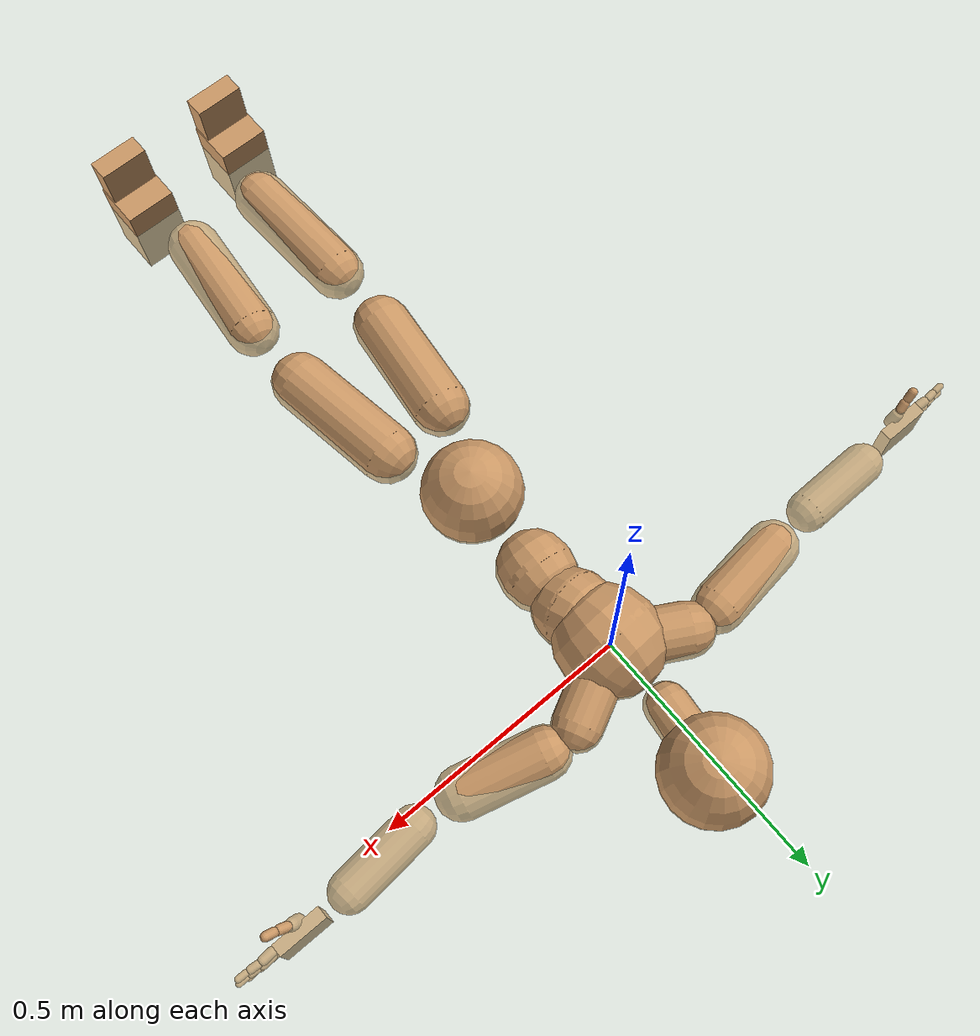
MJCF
<mujoco model="humanoid">
  <compiler coordinate="local"/>
  <default>
    <joint damping="0.0" armature="0.01" stiffness="0.0" limited="true"/>
    <geom conaffinity="1" condim="3" contype="7" margin="0.001" rgba="0.8 0.6 .4 1"/>
  </default>
  <asset>
    <texture type="skybox" builtin="gradient" rgb1=".4 .5 .6" rgb2="0 0 0" width="100" height="100"/>
    <texture builtin="flat" height="1278" mark="cross" markrgb="1 1 1" name="texgeom" random="0.01" rgb1="0.8 0.6 0.4" rgb2="0.8 0.6 0.4" type="cube" width="127"/>
    <texture builtin="checker" height="100" name="texplane" rgb1="0 0 0" rgb2="0.8 0.8 0.8" type="2d" width="100"/>
    <material name="MatPlane" reflectance="0.5" shininess="1" specular="1" texrepeat="60 60" texture="texplane"/>
    <material name="geom" texture="texgeom" texuniform="true"/>
  </asset>
  <worldbody>
    <light cutoff="100" diffuse="1 1 1" dir="-0 0 -1.3" directional="true" exponent="1" pos="0 0 1.3" specular=".1 .1 .1"/>
    <geom conaffinity="1" condim="3" name="floor" pos="0 0 0" rgba="0.8 0.9 0.8 1" size="100 100 .2" type="plane" material="MatPlane"/>
    <body name="Pelvis" pos="0.0028 -0.3793 0.0103">
      <freejoint name="Pelvis"/>
      <geom type="sphere" contype="1" conaffinity="1" density="4629.6296296296305" size="0.0970" pos="0.0000 0.0000 0.0000" name="Pelvis"/>
      <body name="L_Hip" pos="0.0553 -0.0953 -0.0258">
        <joint name="L_Hip_x" type="hinge" pos="0 0 0" axis="1 0 0" user="250 2.5 1 500 10 2" armature="0.01" range="-90.0000 90.0000" damping="0" stiffness="0"/>
        <joint name="L_Hip_y" type="hinge" pos="0 0 0" axis="0 1 0" user="250 2.5 1 500 10 2" armature="0.01" range="-90.0000 90.0000" damping="0" stiffness="0"/>
        <joint name="L_Hip_z" type="hinge" pos="0 0 0" axis="0 0 1" user="250 2.5 1 500 10 2" armature="0.01" range="-90.0000 90.0000" damping="0" stiffness="0"/>
        <geom type="capsule" contype="1" conaffinity="1" density="2040.816327" fromto="0.0111 -0.0754 -0.0016 0.0443 -0.3015 -0.0066" size="0.0576" name="L_Hip"/>
        <body name="L_Knee" pos="0.0554 -0.3768 -0.0082">
          <joint name="L_Knee_x" type="hinge" pos="0 0 0" axis="1 0 0" user="250 2.5 1 500 10 2" armature="0.01" range="-180.0000 180.0000" damping="0" stiffness="0"/>
          <joint name="L_Knee_y" type="hinge" pos="0 0 0" axis="0 1 0" user="250 2.5 1 500 10 2" armature="0.01" range="-5.6250 5.6250" damping="0" stiffness="0"/>
          <joint name="L_Knee_z" type="hinge" pos="0 0 0" axis="0 0 1" user="250 2.5 1 500 10 2" armature="0.01" range="-5.6250 5.6250" damping="0" stiffness="0"/>
          <geom type="capsule" contype="1" conaffinity="1" density="1234.567901" fromto="-0.0085 -0.0798 -0.0061 -0.0341 -0.3191 -0.0246" size="0.0522" name="L_Knee"/>
          <body name="L_Ankle" pos="-0.0426 -0.3989 -0.0307">
            <joint name="L_Ankle_x" type="hinge" pos="0 0 0" axis="1 0 0" user="150 2.5 1 500 10 2" armature="0.01" range="-90.0000 90.0000" damping="0" stiffness="0"/>
            <joint name="L_Ankle_y" type="hinge" pos="0 0 0" axis="0 1 0" user="150 2.5 1 500 10 2" armature="0.01" range="-90.0000 90.0000" damping="0" stiffness="0"/>
            <joint name="L_Ankle_z" type="hinge" pos="0 0 0" axis="0 0 1" user="150 2.5 1 500 10 2" armature="0.01" range="-90.0000 90.0000" damping="0" stiffness="0"/>
            <geom type="box" density="447.069011" pos="0.0410 -0.0287 0.0243" size="0.0501 0.0468 0.0857" quat="1.0000 0.0000 0.0000 0.0000" name="L_Ankle"/>
            <body name="L_Toe" pos="0.0476 -0.0584 0.1195">
              <joint name="L_Toe_x" type="hinge" pos="0 0 0" axis="1 0 0" user="150 1 1 500 1 1" armature="0.01" range="-90.0000 90.0000" damping="0" stiffness="0"/>
              <joint name="L_Toe_y" type="hinge" pos="0 0 0" axis="0 1 0" user="150 1 1 500 1 1" armature="0.01" range="-45.0000 45.0000" damping="0" stiffness="0"/>
              <joint name="L_Toe_z" type="hinge" pos="0 0 0" axis="0 0 1" user="150 1 1 500 1 1" armature="0.01" range="-45.0000 45.0000" damping="0" stiffness="0"/>
              <geom type="box" density="422.640499" pos="-0.0065 0.0036 0.0261" size="0.0481 0.0206 0.05" quat="1.0000 0.0000 0.0000 0.0000" name="L_Toe"/>
            </body>
          </body>
        </body>
      </body>
      <body name="R_Hip" pos="-0.0601 -0.1073 -0.021">
        <joint name="R_Hip_x" type="hinge" pos="0 0 0" axis="1 0 0" user="250 2.5 1 500 10 2" armature="0.01" range="-90.0000 90.0000" damping="0" stiffness="0"/>
        <joint name="R_Hip_y" type="hinge" pos="0 0 0" axis="0 1 0" user="250 2.5 1 500 10 2" armature="0.01" range="-90.0000 90.0000" damping="0" stiffness="0"/>
        <joint name="R_Hip_z" type="hinge" pos="0 0 0" axis="0 0 1" user="250 2.5 1 500 10 2" armature="0.01" range="-90.0000 90.0000" damping="0" stiffness="0"/>
        <geom type="capsule" contype="1" conaffinity="1" density="2040.816327" fromto="-0.0090 -0.0719 -0.0031 -0.0360 -0.2875 -0.0124" size="0.0569" name="R_Hip"/>
        <body name="R_Knee" pos="-0.045 -0.3594 -0.0155">
          <joint name="R_Knee_x" type="hinge" pos="0 0 0" axis="1 0 0" user="250 2.5 1 500 10 2" armature="0.01" range="-180.0000 180.0000" damping="0" stiffness="0"/>
          <joint name="R_Knee_y" type="hinge" pos="0 0 0" axis="0 1 0" user="250 2.5 1 500 10 2" armature="0.01" range="-5.6250 5.6250" damping="0" stiffness="0"/>
          <joint name="R_Knee_z" type="hinge" pos="0 0 0" axis="0 0 1" user="250 2.5 1 500 10 2" armature="0.01" range="-5.6250 5.6250" damping="0" stiffness="0"/>
          <geom type="capsule" contype="1" conaffinity="1" density="1234.567901" fromto="0.0030 -0.0814 -0.0038 0.0119 -0.3254 -0.0154" size="0.0538" name="R_Knee"/>
          <body name="R_Ankle" pos="0.0149 -0.4068 -0.0192">
            <joint name="R_Ankle_x" type="hinge" pos="0 0 0" axis="1 0 0" user="150 1 1 500 10 2" armature="0.01" range="-90.0000 90.0000" damping="0" stiffness="0"/>
            <joint name="R_Ankle_y" type="hinge" pos="0 0 0" axis="0 1 0" user="150 1 1 500 10 2" armature="0.01" range="-90.0000 90.0000" damping="0" stiffness="0"/>
            <joint name="R_Ankle_z" type="hinge" pos="0 0 0" axis="0 0 1" user="150 1 1 500 10 2" armature="0.01" range="-90.0000 90.0000" damping="0" stiffness="0"/>
            <geom type="box" density="447.059452" pos="-0.0245 -0.0262 0.0153" size="0.0501 0.0468 0.0857" quat="1.0000 0.0000 0.0000 0.0000" name="R_Ankle"/>
            <body name="R_Toe" pos="-0.039 -0.0588 0.1203">
              <joint name="R_Toe_x" type="hinge" pos="0 0 0" axis="1 0 0" user="150 1 1 500 1 1" armature="0.01" range="-90.0000 90.0000" damping="0" stiffness="0"/>
              <joint name="R_Toe_y" type="hinge" pos="0 0 0" axis="0 1 0" user="150 1 1 500 1 1" armature="0.01" range="-45.0000 45.0000" damping="0" stiffness="0"/>
              <joint name="R_Toe_z" type="hinge" pos="0 0 0" axis="0 0 1" user="150 1 1 500 1 1" armature="0.01" range="-45.0000 45.0000" damping="0" stiffness="0"/>
              <geom type="box" density="422.641569" pos="0.0145 0.0065 0.0162" size="0.0481 0.0206 0.05" quat="1.0000 0.0000 0.0000 0.0000" name="R_Toe"/>
            </body>
          </body>
        </body>
      </body>
      <body name="Torso" pos="-0.0023 0.1133 -0.0273">
        <joint name="Torso_x" type="hinge" pos="0 0 0" axis="1 0 0" user="500 5 1 500 10 2" armature="0.01" range="-60.0000 60.0000" damping="0" stiffness="0"/>
        <joint name="Torso_y" type="hinge" pos="0 0 0" axis="0 1 0" user="500 5 1 500 10 2" armature="0.01" range="-60.0000 60.0000" damping="0" stiffness="0"/>
        <joint name="Torso_z" type="hinge" pos="0 0 0" axis="0 0 1" user="500 5 1 500 10 2" armature="0.01" range="-60.0000 60.0000" damping="0" stiffness="0"/>
        <geom type="capsule" contype="1" conaffinity="1" density="2040.816327" fromto="0.0041 0.0654 -0.0024 0.0050 0.0799 -0.0029" size="0.0723" name="Torso"/>
        <body name="Spine" pos="0.0091 0.1453 -0.0053">
          <joint name="Spine_x" type="hinge" pos="0 0 0" axis="1 0 0" user="500 5 1 500 10 2" armature="0.01" range="-60.0000 60.0000" damping="0" stiffness="0"/>
          <joint name="Spine_y" type="hinge" pos="0 0 0" axis="0 1 0" user="500 5 1 500 10 2" armature="0.01" range="-60.0000 60.0000" damping="0" stiffness="0"/>
          <joint name="Spine_z" type="hinge" pos="0 0 0" axis="0 0 1" user="500 5 1 500 10 2" armature="0.01" range="-60.0000 60.0000" damping="0" stiffness="0"/>
          <geom type="capsule" contype="1" conaffinity="1" density="2040.816327" fromto="-0.0050 0.0251 0.0113 -0.0061 0.0307 0.0138" size="0.0764" name="Spine"/>
          <body name="Chest" pos="-0.0111 0.0559 0.0251">
            <joint name="Chest_x" type="hinge" pos="0 0 0" axis="1 0 0" user="500 5 1 500 10 2" armature="0.01" range="-60.0000 60.0000" damping="0" stiffness="0"/>
            <joint name="Chest_y" type="hinge" pos="0 0 0" axis="0 1 0" user="500 5 1 500 10 2" armature="0.01" range="-60.0000 60.0000" damping="0" stiffness="0"/>
            <joint name="Chest_z" type="hinge" pos="0 0 0" axis="0 0 1" user="500 5 1 500 10 2" armature="0.01" range="-60.0000 60.0000" damping="0" stiffness="0"/>
            <geom type="capsule" contype="1" conaffinity="1" density="2040.816327" fromto="-0.0019 0.0520 -0.0071 -0.0024 0.0636 -0.0087" size="0.1015" name="Chest"/>
            <body name="Neck" pos="-0.0118 0.1718 -0.0288">
              <joint name="Neck_x" type="hinge" pos="0 0 0" axis="1 0 0" user="150 1 1 250 50 4" armature="0.01" range="-180.0000 180.0000" damping="0" stiffness="0"/>
              <joint name="Neck_y" type="hinge" pos="0 0 0" axis="0 1 0" user="150 1 1 250 50 4" armature="0.01" range="-180.0000 180.0000" damping="0" stiffness="0"/>
              <joint name="Neck_z" type="hinge" pos="0 0 0" axis="0 0 1" user="150 1 1 250 50 4" armature="0.01" range="-180.0000 180.0000" damping="0" stiffness="0"/>
              <geom type="capsule" contype="1" conaffinity="1" density="1000" fromto="0.0049 0.0349 0.0045 0.0197 0.1394 0.0180" size="0.0427" name="Neck"/>
              <body name="Head" pos="0.0246 0.1743 0.0225">
                <joint name="Head_x" type="hinge" pos="0 0 0" axis="1 0 0" user="150 1 1 250 50 4" armature="0.01" range="-90.0000 90.0000" damping="0" stiffness="0"/>
                <joint name="Head_y" type="hinge" pos="0 0 0" axis="0 1 0" user="150 1 1 250 50 4" armature="0.01" range="-90.0000 90.0000" damping="0" stiffness="0"/>
                <joint name="Head_z" type="hinge" pos="0 0 0" axis="0 0 1" user="150 1 1 250 50 4" armature="0.01" range="-90.0000 90.0000" damping="0" stiffness="0"/>
                <geom type="sphere" contype="1" conaffinity="1" density="1000" size="0.1020" pos="0.0000 0.0000 0.0000" name="Head"/>
              </body>
            </body>
            <body name="L_Thorax" pos="0.0455 0.0879 -0.0064">
              <joint name="L_Thorax_x" type="hinge" pos="0 0 0" axis="1 0 0" user="200 2 1 500 50 4" armature="0.01" range="-180.0000 180.0000" damping="0" stiffness="0"/>
              <joint name="L_Thorax_y" type="hinge" pos="0 0 0" axis="0 1 0" user="200 2 1 500 50 4" armature="0.01" range="-180.0000 180.0000" damping="0" stiffness="0"/>
              <joint name="L_Thorax_z" type="hinge" pos="0 0 0" axis="0 0 1" user="200 2 1 500 50 4" armature="0.01" range="-180.0000 180.0000" damping="0" stiffness="0"/>
              <geom type="capsule" contype="1" conaffinity="1" density="1000" fromto="0.0233 0.0115 -0.0030 0.0931 0.0461 -0.0121" size="0.0479" name="L_Thorax"/>
              <body name="L_Shoulder" pos="0.1164 0.0576 -0.0152">
                <joint name="L_Shoulder_x" type="hinge" pos="0 0 0" axis="1 0 0" user="200 2 1 500 50 4" armature="0.01" range="-180.0000 180.0000" damping="0" stiffness="0"/>
                <joint name="L_Shoulder_y" type="hinge" pos="0 0 0" axis="0 1 0" user="200 2 1 500 50 4" armature="0.01" range="-180.0000 180.0000" damping="0" stiffness="0"/>
                <joint name="L_Shoulder_z" type="hinge" pos="0 0 0" axis="0 0 1" user="200 2 1 500 50 4" armature="0.01" range="-180.0000 180.0000" damping="0" stiffness="0"/>
                <geom type="capsule" contype="1" conaffinity="1" density="1000" fromto="0.0500 -0.0143 -0.0080 0.2002 -0.0573 -0.0322" size="0.0504" name="L_Shoulder"/>
                <body name="L_Elbow" pos="0.2502 -0.0716 -0.0402">
                  <joint name="L_Elbow_x" type="hinge" pos="0 0 0" axis="1 0 0" user="150 1 1 150 10 2" armature="0.01" range="-720.0000 720.0000" damping="0" stiffness="0"/>
                  <joint name="L_Elbow_y" type="hinge" pos="0 0 0" axis="0 1 0" user="150 1 1 150 10 2" armature="0.01" range="-720.0000 720.0000" damping="0" stiffness="0"/>
                  <joint name="L_Elbow_z" type="hinge" pos="0 0 0" axis="0 0 1" user="150 1 1 150 10 2" armature="0.01" range="-720.0000 720.0000" damping="0" stiffness="0"/>
                  <geom type="capsule" contype="1" conaffinity="1" density="1000" fromto="0.0503 0.0043 -0.0004 0.2010 0.0172 -0.0015" size="0.0398" name="L_Elbow"/>
                  <body name="L_Wrist" pos="0.2513 0.0215 -0.0019">
                    <joint name="L_Wrist_x" type="hinge" pos="0 0 0" axis="1 0 0" user="100 1 1 150 1 1" armature="0.01" range="-180.0000 180.0000" damping="0" stiffness="0"/>
                    <joint name="L_Wrist_y" type="hinge" pos="0 0 0" axis="0 1 0" user="100 1 1 150 1 1" armature="0.01" range="-180.0000 180.0000" damping="0" stiffness="0"/>
                    <joint name="L_Wrist_z" type="hinge" pos="0 0 0" axis="0 0 1" user="100 1 1 150 1 1" armature="0.01" range="-180.0000 180.0000" damping="0" stiffness="0"/>
                    <geom type="box" density="1208.770029" pos="0.0523 -0.0014 -0.0030" size="0.0483 0.0123 0.0464" quat="1.0000 0.0000 0.0000 0.0000" name="L_Wrist"/>
                    <body name="L_Index1" pos="0.1017 -0.0085 0.0196">
                      <joint name="L_Index1_x" type="hinge" pos="0 0 0" axis="1 0 0" user="100 10 1 150" armature="0.01" range="-180.0000 180.0000" damping="0" stiffness="0"/>
                      <joint name="L_Index1_y" type="hinge" pos="0 0 0" axis="0 1 0" user="100 10 1 150" armature="0.01" range="-180.0000 180.0000" damping="0" stiffness="0"/>
                      <joint name="L_Index1_z" type="hinge" pos="0 0 0" axis="0 0 1" user="100 10 1 150" armature="0.01" range="-180.0000 180.0000" damping="0" stiffness="0"/>
                      <geom type="capsule" contype="1" conaffinity="1" density="1000" fromto="0.0064 0.0005 0.0006 0.0256 0.0018 0.0023" size="0.0093" name="L_Index1"/>
                      <body name="L_Index2" pos="0.0321 0.0023 0.0029">
                        <joint name="L_Index2_x" type="hinge" pos="0 0 0" axis="1 0 0" user="100 10 1 150" armature="0.01" range="-180.0000 180.0000" damping="0" stiffness="0"/>
                        <joint name="L_Index2_y" type="hinge" pos="0 0 0" axis="0 1 0" user="100 10 1 150" armature="0.01" range="-180.0000 180.0000" damping="0" stiffness="0"/>
                        <joint name="L_Index2_z" type="hinge" pos="0 0 0" axis="0 0 1" user="100 10 1 150" armature="0.01" range="-180.0000 180.0000" damping="0" stiffness="0"/>
                        <geom type="capsule" contype="1" conaffinity="1" density="1000" fromto="0.0045 -0.0005 -0.0000 0.0181 -0.0019 -0.0001" size="0.0077" name="L_Index2"/>
                        <body name="L_Index3" pos="0.0226 -0.0024 -0.0001">
                          <joint name="L_Index3_x" type="hinge" pos="0 0 0" axis="1 0 0" user="100 10 1 150" armature="0.01" range="-180.0000 180.0000" damping="0" stiffness="0"/>
                          <joint name="L_Index3_y" type="hinge" pos="0 0 0" axis="0 1 0" user="100 10 1 150" armature="0.01" range="-180.0000 180.0000" damping="0" stiffness="0"/>
                          <joint name="L_Index3_z" type="hinge" pos="0 0 0" axis="0 0 1" user="100 10 1 150" armature="0.01" range="-180.0000 180.0000" damping="0" stiffness="0"/>
                          <geom type="capsule" contype="1" conaffinity="1" density="1000" fromto="0.0049 -0.0001 0.0004 0.0197 -0.0003 0.0015" size="0.0065" name="L_Index3"/>
                        </body>
                      </body>
                    </body>
                    <body name="L_Middle1" pos="0.1092 -0.0062 -0.004">
                      <joint name="L_Middle1_x" type="hinge" pos="0 0 0" axis="1 0 0" user="100 10 1 150" armature="0.01" range="-180.0000 180.0000" damping="0" stiffness="0"/>
                      <joint name="L_Middle1_y" type="hinge" pos="0 0 0" axis="0 1 0" user="100 10 1 150" armature="0.01" range="-180.0000 180.0000" damping="0" stiffness="0"/>
                      <joint name="L_Middle1_z" type="hinge" pos="0 0 0" axis="0 0 1" user="100 10 1 150" armature="0.01" range="-180.0000 180.0000" damping="0" stiffness="0"/>
                      <geom type="capsule" contype="1" conaffinity="1" density="1000" fromto="0.0061 0.0001 -0.0008 0.0245 0.0006 -0.0033" size="0.0095" name="L_Middle1"/>
                      <body name="L_Middle2" pos="0.0306 0.0007 -0.0041">
                        <joint name="L_Middle2_x" type="hinge" pos="0 0 0" axis="1 0 0" user="100 10 1 150" armature="0.01" range="-180.0000 180.0000" damping="0" stiffness="0"/>
                        <joint name="L_Middle2_y" type="hinge" pos="0 0 0" axis="0 1 0" user="100 10 1 150" armature="0.01" range="-180.0000 180.0000" damping="0" stiffness="0"/>
                        <joint name="L_Middle2_z" type="hinge" pos="0 0 0" axis="0 0 1" user="100 10 1 150" armature="0.01" range="-180.0000 180.0000" damping="0" stiffness="0"/>
                        <geom type="capsule" contype="1" conaffinity="1" density="1000" fromto="0.0047 -0.0004 -0.0008 0.0188 -0.0016 -0.0033" size="0.0071" name="L_Middle2"/>
                        <body name="L_Middle3" pos="0.0235 -0.002 -0.0042">
                          <joint name="L_Middle3_x" type="hinge" pos="0 0 0" axis="1 0 0" user="100 10 1 150" armature="0.01" range="-180.0000 180.0000" damping="0" stiffness="0"/>
                          <joint name="L_Middle3_y" type="hinge" pos="0 0 0" axis="0 1 0" user="100 10 1 150" armature="0.01" range="-180.0000 180.0000" damping="0" stiffness="0"/>
                          <joint name="L_Middle3_z" type="hinge" pos="0 0 0" axis="0 0 1" user="100 10 1 150" armature="0.01" range="-180.0000 180.0000" damping="0" stiffness="0"/>
                          <geom type="capsule" contype="1" conaffinity="1" density="1000" fromto="0.0051 -0.0000 -0.0004 0.0204 -0.0000 -0.0017" size="0.0062" name="L_Middle3"/>
                        </body>
                      </body>
                    </body>
                    <body name="L_Pinky1" pos="0.084 -0.0145 -0.0442">
                      <joint name="L_Pinky1_x" type="hinge" pos="0 0 0" axis="1 0 0" user="100 10 1 150" armature="0.01" range="-180.0000 180.0000" damping="0" stiffness="0"/>
                      <joint name="L_Pinky1_y" type="hinge" pos="0 0 0" axis="0 1 0" user="100 10 1 150" armature="0.01" range="-180.0000 180.0000" damping="0" stiffness="0"/>
                      <joint name="L_Pinky1_z" type="hinge" pos="0 0 0" axis="0 0 1" user="100 10 1 150" armature="0.01" range="-180.0000 180.0000" damping="0" stiffness="0"/>
                      <geom type="capsule" contype="1" conaffinity="1" density="1000" fromto="0.0031 -0.0002 -0.0024 0.0126 -0.0009 -0.0096" size="0.0067" name="L_Pinky1"/>
                      <body name="L_Pinky2" pos="0.0157 -0.0012 -0.012">
                        <joint name="L_Pinky2_x" type="hinge" pos="0 0 0" axis="1 0 0" user="100 10 1 150" armature="0.01" range="-180.0000 180.0000" damping="0" stiffness="0"/>
                        <joint name="L_Pinky2_y" type="hinge" pos="0 0 0" axis="0 1 0" user="100 10 1 150" armature="0.01" range="-180.0000 180.0000" damping="0" stiffness="0"/>
                        <joint name="L_Pinky2_z" type="hinge" pos="0 0 0" axis="0 0 1" user="100 10 1 150" armature="0.01" range="-180.0000 180.0000" damping="0" stiffness="0"/>
                        <geom type="capsule" contype="1" conaffinity="1" density="1000" fromto="0.0031 -0.0003 -0.0022 0.0125 -0.0014 -0.0089" size="0.0065" name="L_Pinky2"/>
                        <body name="L_Pinky3" pos="0.0157 -0.0017 -0.0112">
                          <joint name="L_Pinky3_x" type="hinge" pos="0 0 0" axis="1 0 0" user="100 10 1 150" armature="0.01" range="-180.0000 180.0000" damping="0" stiffness="0"/>
                          <joint name="L_Pinky3_y" type="hinge" pos="0 0 0" axis="0 1 0" user="100 10 1 150" armature="0.01" range="-180.0000 180.0000" damping="0" stiffness="0"/>
                          <joint name="L_Pinky3_z" type="hinge" pos="0 0 0" axis="0 0 1" user="100 10 1 150" armature="0.01" range="-180.0000 180.0000" damping="0" stiffness="0"/>
                          <geom type="capsule" contype="1" conaffinity="1" density="1000" fromto="0.0035 0.0001 -0.0018 0.0141 0.0002 -0.0073" size="0.005" name="L_Pinky3"/>
                        </body>
                      </body>
                    </body>
                    <body name="L_Ring1" pos="0.0973 -0.0091 -0.0276">
                      <joint name="L_Ring1_x" type="hinge" pos="0 0 0" axis="1 0 0" user="100 10 1 150" armature="0.01" range="-180.0000 180.0000" damping="0" stiffness="0"/>
                      <joint name="L_Ring1_y" type="hinge" pos="0 0 0" axis="0 1 0" user="100 10 1 150" armature="0.01" range="-180.0000 180.0000" damping="0" stiffness="0"/>
                      <joint name="L_Ring1_z" type="hinge" pos="0 0 0" axis="0 0 1" user="100 10 1 150" armature="0.01" range="-180.0000 180.0000" damping="0" stiffness="0"/>
                      <geom type="capsule" contype="1" conaffinity="1" density="1000" fromto="0.0056 0.0003 -0.0011 0.0226 0.0012 -0.0042" size="0.008" name="L_Ring1"/>
                      <body name="L_Ring2" pos="0.0282 0.0015 -0.0053">
                        <joint name="L_Ring2_x" type="hinge" pos="0 0 0" axis="1 0 0" user="100 10 1 150" armature="0.01" range="-180.0000 180.0000" damping="0" stiffness="0"/>
                        <joint name="L_Ring2_y" type="hinge" pos="0 0 0" axis="0 1 0" user="100 10 1 150" armature="0.01" range="-180.0000 180.0000" damping="0" stiffness="0"/>
                        <joint name="L_Ring2_z" type="hinge" pos="0 0 0" axis="0 0 1" user="100 10 1 150" armature="0.01" range="-180.0000 180.0000" damping="0" stiffness="0"/>
                        <geom type="capsule" contype="1" conaffinity="1" density="1000" fromto="0.0046 -0.0003 -0.0014 0.0183 -0.0012 -0.0057" size="0.0075" name="L_Ring2"/>
                        <body name="L_Ring3" pos="0.0229 -0.0015 -0.0071">
                          <joint name="L_Ring3_x" type="hinge" pos="0 0 0" axis="1 0 0" user="100 10 1 150" armature="0.01" range="-180.0000 180.0000" damping="0" stiffness="0"/>
                          <joint name="L_Ring3_y" type="hinge" pos="0 0 0" axis="0 1 0" user="100 10 1 150" armature="0.01" range="-180.0000 180.0000" damping="0" stiffness="0"/>
                          <joint name="L_Ring3_z" type="hinge" pos="0 0 0" axis="0 0 1" user="100 10 1 150" armature="0.01" range="-180.0000 180.0000" damping="0" stiffness="0"/>
                          <geom type="capsule" contype="1" conaffinity="1" density="1000" fromto="0.0050 0.0001 -0.0010 0.0199 0.0004 -0.0041" size="0.0058" name="L_Ring3"/>
                        </body>
                      </body>
                    </body>
                    <body name="L_Thumb1" pos="0.0404 -0.0182 0.026">
                      <joint name="L_Thumb1_x" type="hinge" pos="0 0 0" axis="1 0 0" user="100 10 1 150" armature="0.01" range="-180.0000 180.0000" damping="0" stiffness="0"/>
                      <joint name="L_Thumb1_y" type="hinge" pos="0 0 0" axis="0 1 0" user="100 10 1 150" armature="0.01" range="-180.0000 180.0000" damping="0" stiffness="0"/>
                      <joint name="L_Thumb1_z" type="hinge" pos="0 0 0" axis="0 0 1" user="100 10 1 150" armature="0.01" range="-180.0000 180.0000" damping="0" stiffness="0"/>
                      <geom type="capsule" contype="1" conaffinity="1" density="1000" fromto="0.0034 0.0002 0.0051 0.0137 0.0008 0.0203" size="0.0121" name="L_Thumb1"/>
                      <body name="L_Thumb2" pos="0.0171 0.001 0.0253">
                        <joint name="L_Thumb2_x" type="hinge" pos="0 0 0" axis="1 0 0" user="100 10 1 150" armature="0.01" range="-180.0000 180.0000" damping="0" stiffness="0"/>
                        <joint name="L_Thumb2_y" type="hinge" pos="0 0 0" axis="0 1 0" user="100 10 1 150" armature="0.01" range="-180.0000 180.0000" damping="0" stiffness="0"/>
                        <joint name="L_Thumb2_z" type="hinge" pos="0 0 0" axis="0 0 1" user="100 10 1 150" armature="0.01" range="-180.0000 180.0000" damping="0" stiffness="0"/>
                        <geom type="capsule" contype="1" conaffinity="1" density="1000" fromto="0.0042 -0.0010 0.0031 0.0167 -0.0040 0.0125" size="0.0096" name="L_Thumb2"/>
                        <body name="L_Thumb3" pos="0.0208 -0.005 0.0156">
                          <joint name="L_Thumb3_x" type="hinge" pos="0 0 0" axis="1 0 0" user="100 10 1 150" armature="0.01" range="-180.0000 180.0000" damping="0" stiffness="0"/>
                          <joint name="L_Thumb3_y" type="hinge" pos="0 0 0" axis="0 1 0" user="100 10 1 150" armature="0.01" range="-180.0000 180.0000" damping="0" stiffness="0"/>
                          <joint name="L_Thumb3_z" type="hinge" pos="0 0 0" axis="0 0 1" user="100 10 1 150" armature="0.01" range="-180.0000 180.0000" damping="0" stiffness="0"/>
                          <geom type="capsule" contype="1" conaffinity="1" density="1000" fromto="0.0046 -0.0006 0.0035 0.0183 -0.0024 0.0141" size="0.0088" name="L_Thumb3"/>
                        </body>
                      </body>
                    </body>
                  </body>
                </body>
              </body>
            </body>
            <body name="R_Thorax" pos="-0.0466 0.0872 -0.0124">
              <joint name="R_Thorax_x" type="hinge" pos="0 0 0" axis="1 0 0" user="200 2 1 150 10 2" armature="0.01" range="-180.0000 180.0000" damping="0" stiffness="0"/>
              <joint name="R_Thorax_y" type="hinge" pos="0 0 0" axis="0 1 0" user="200 2 1 150 10 2" armature="0.01" range="-180.0000 180.0000" damping="0" stiffness="0"/>
              <joint name="R_Thorax_z" type="hinge" pos="0 0 0" axis="0 0 1" user="200 2 1 150 10 2" armature="0.01" range="-180.0000 180.0000" damping="0" stiffness="0"/>
              <geom type="capsule" contype="1" conaffinity="1" density="1000" fromto="-0.0201 0.0107 -0.0023 -0.0803 0.0427 -0.0092" size="0.0527" name="R_Thorax"/>
              <body name="R_Shoulder" pos="-0.1004 0.0534 -0.0116">
                <joint name="R_Shoulder_x" type="hinge" pos="0 0 0" axis="1 0 0" user="200 2 1 250 10 2" armature="0.01" range="-180.0000 180.0000" damping="0" stiffness="0"/>
                <joint name="R_Shoulder_y" type="hinge" pos="0 0 0" axis="0 1 0" user="200 2 1 250 10 2" armature="0.01" range="-180.0000 180.0000" damping="0" stiffness="0"/>
                <joint name="R_Shoulder_z" type="hinge" pos="0 0 0" axis="0 0 1" user="200 2 1 250 10 2" armature="0.01" range="-180.0000 180.0000" damping="0" stiffness="0"/>
                <geom type="capsule" contype="1" conaffinity="1" density="1000" fromto="-0.0534 -0.0073 -0.0051 -0.2134 -0.0293 -0.0205" size="0.0503" name="R_Shoulder"/>
                <body name="R_Elbow" pos="-0.2668 -0.0366 -0.0256">
                  <joint name="R_Elbow_x" type="hinge" pos="0 0 0" axis="1 0 0" user="150 1 1 150 10 2" armature="0.01" range="-720.0000 720.0000" damping="0" stiffness="0"/>
                  <joint name="R_Elbow_y" type="hinge" pos="0 0 0" axis="0 1 0" user="150 1 1 150 10 2" armature="0.01" range="-720.0000 720.0000" damping="0" stiffness="0"/>
                  <joint name="R_Elbow_z" type="hinge" pos="0 0 0" axis="0 0 1" user="150 1 1 150 10 2" armature="0.01" range="-720.0000 720.0000" damping="0" stiffness="0"/>
                  <geom type="capsule" contype="1" conaffinity="1" density="1000" fromto="-0.0497 -0.0011 -0.0029 -0.1987 -0.0043 -0.0117" size="0.04" name="R_Elbow"/>
                  <body name="R_Wrist" pos="-0.2483 -0.0054 -0.0146">
                    <joint name="R_Wrist_x" type="hinge" pos="0 0 0" axis="1 0 0" user="100 1 1 150 1 1" armature="0.01" range="-180.0000 180.0000" damping="0" stiffness="0"/>
                    <joint name="R_Wrist_y" type="hinge" pos="0 0 0" axis="0 1 0" user="100 1 1 150 1 1" armature="0.01" range="-180.0000 180.0000" damping="0" stiffness="0"/>
                    <joint name="R_Wrist_z" type="hinge" pos="0 0 0" axis="0 0 1" user="100 1 1 150 1 1" armature="0.01" range="-180.0000 180.0000" damping="0" stiffness="0"/>
                    <geom type="box" density="1238.496861" pos="-0.0536 -0.0046 -0.0027" size="0.0454 0.0123 0.0464" quat="1.0000 0.0000 0.0000 0.0000" name="R_Wrist"/>
                    <body name="R_Index1" pos="-0.0997 -0.0117 0.02">
                      <joint name="R_Index1_x" type="hinge" pos="0 0 0" axis="1 0 0" user="100 10 1 150" armature="0.01" range="-180.0000 180.0000" damping="0" stiffness="0"/>
                      <joint name="R_Index1_y" type="hinge" pos="0 0 0" axis="0 1 0" user="100 10 1 150" armature="0.01" range="-180.0000 180.0000" damping="0" stiffness="0"/>
                      <joint name="R_Index1_z" type="hinge" pos="0 0 0" axis="0 0 1" user="100 10 1 150" armature="0.01" range="-180.0000 180.0000" damping="0" stiffness="0"/>
                      <geom type="capsule" contype="1" conaffinity="1" density="1000" fromto="-0.0064 0.0005 0.0006 -0.0256 0.0018 0.0023" size="0.0093" name="R_Index1"/>
                      <body name="R_Index2" pos="-0.0321 0.0023 0.0029">
                        <joint name="R_Index2_x" type="hinge" pos="0 0 0" axis="1 0 0" user="100 10 1 150" armature="0.01" range="-180.0000 180.0000" damping="0" stiffness="0"/>
                        <joint name="R_Index2_y" type="hinge" pos="0 0 0" axis="0 1 0" user="100 10 1 150" armature="0.01" range="-180.0000 180.0000" damping="0" stiffness="0"/>
                        <joint name="R_Index2_z" type="hinge" pos="0 0 0" axis="0 0 1" user="100 10 1 150" armature="0.01" range="-180.0000 180.0000" damping="0" stiffness="0"/>
                        <geom type="capsule" contype="1" conaffinity="1" density="1000" fromto="-0.0045 -0.0005 -0.0000 -0.0181 -0.0019 -0.0001" size="0.0077" name="R_Index2"/>
                        <body name="R_Index3" pos="-0.0226 -0.0024 -0.0001">
                          <joint name="R_Index3_x" type="hinge" pos="0 0 0" axis="1 0 0" user="100 10 1 150" armature="0.01" range="-180.0000 180.0000" damping="0" stiffness="0"/>
                          <joint name="R_Index3_y" type="hinge" pos="0 0 0" axis="0 1 0" user="100 10 1 150" armature="0.01" range="-180.0000 180.0000" damping="0" stiffness="0"/>
                          <joint name="R_Index3_z" type="hinge" pos="0 0 0" axis="0 0 1" user="100 10 1 150" armature="0.01" range="-180.0000 180.0000" damping="0" stiffness="0"/>
                          <geom type="capsule" contype="1" conaffinity="1" density="1000" fromto="-0.0041 -0.0001 0.0004 -0.0165 -0.0003 0.0015" size="0.0068" name="R_Index3"/>
                        </body>
                      </body>
                    </body>
                    <body name="R_Middle1" pos="-0.1072 -0.0094 -0.0036">
                      <joint name="R_Middle1_x" type="hinge" pos="0 0 0" axis="1 0 0" user="100 10 1 150" armature="0.01" range="-180.0000 180.0000" damping="0" stiffness="0"/>
                      <joint name="R_Middle1_y" type="hinge" pos="0 0 0" axis="0 1 0" user="100 10 1 150" armature="0.01" range="-180.0000 180.0000" damping="0" stiffness="0"/>
                      <joint name="R_Middle1_z" type="hinge" pos="0 0 0" axis="0 0 1" user="100 10 1 150" armature="0.01" range="-180.0000 180.0000" damping="0" stiffness="0"/>
                      <geom type="capsule" contype="1" conaffinity="1" density="1000" fromto="-0.0061 0.0001 -0.0008 -0.0245 0.0006 -0.0033" size="0.0095" name="R_Middle1"/>
                      <body name="R_Middle2" pos="-0.0306 0.0007 -0.0041">
                        <joint name="R_Middle2_x" type="hinge" pos="0 0 0" axis="1 0 0" user="100 10 1 150" armature="0.01" range="-180.0000 180.0000" damping="0" stiffness="0"/>
                        <joint name="R_Middle2_y" type="hinge" pos="0 0 0" axis="0 1 0" user="100 10 1 150" armature="0.01" range="-180.0000 180.0000" damping="0" stiffness="0"/>
                        <joint name="R_Middle2_z" type="hinge" pos="0 0 0" axis="0 0 1" user="100 10 1 150" armature="0.01" range="-180.0000 180.0000" damping="0" stiffness="0"/>
                        <geom type="capsule" contype="1" conaffinity="1" density="1000" fromto="-0.0047 -0.0004 -0.0008 -0.0188 -0.0016 -0.0033" size="0.0071" name="R_Middle2"/>
                        <body name="R_Middle3" pos="-0.0235 -0.002 -0.0042">
                          <joint name="R_Middle3_x" type="hinge" pos="0 0 0" axis="1 0 0" user="100 10 1 150" armature="0.01" range="-180.0000 180.0000" damping="0" stiffness="0"/>
                          <joint name="R_Middle3_y" type="hinge" pos="0 0 0" axis="0 1 0" user="100 10 1 150" armature="0.01" range="-180.0000 180.0000" damping="0" stiffness="0"/>
                          <joint name="R_Middle3_z" type="hinge" pos="0 0 0" axis="0 0 1" user="100 10 1 150" armature="0.01" range="-180.0000 180.0000" damping="0" stiffness="0"/>
                          <geom type="capsule" contype="1" conaffinity="1" density="1000" fromto="-0.0043 -0.0000 -0.0004 -0.0172 -0.0000 -0.0017" size="0.0065" name="R_Middle3"/>
                        </body>
                      </body>
                    </body>
                    <body name="R_Pinky1" pos="-0.082 -0.0177 -0.0438">
                      <joint name="R_Pinky1_x" type="hinge" pos="0 0 0" axis="1 0 0" user="100 10 1 150" armature="0.01" range="-180.0000 180.0000" damping="0" stiffness="0"/>
                      <joint name="R_Pinky1_y" type="hinge" pos="0 0 0" axis="0 1 0" user="100 10 1 150" armature="0.01" range="-180.0000 180.0000" damping="0" stiffness="0"/>
                      <joint name="R_Pinky1_z" type="hinge" pos="0 0 0" axis="0 0 1" user="100 10 1 150" armature="0.01" range="-180.0000 180.0000" damping="0" stiffness="0"/>
                      <geom type="capsule" contype="1" conaffinity="1" density="1000" fromto="-0.0031 -0.0002 -0.0024 -0.0126 -0.0009 -0.0096" size="0.0067" name="R_Pinky1"/>
                      <body name="R_Pinky2" pos="-0.0157 -0.0012 -0.012">
                        <joint name="R_Pinky2_x" type="hinge" pos="0 0 0" axis="1 0 0" user="100 10 1 150" armature="0.01" range="-180.0000 180.0000" damping="0" stiffness="0"/>
                        <joint name="R_Pinky2_y" type="hinge" pos="0 0 0" axis="0 1 0" user="100 10 1 150" armature="0.01" range="-180.0000 180.0000" damping="0" stiffness="0"/>
                        <joint name="R_Pinky2_z" type="hinge" pos="0 0 0" axis="0 0 1" user="100 10 1 150" armature="0.01" range="-180.0000 180.0000" damping="0" stiffness="0"/>
                        <geom type="capsule" contype="1" conaffinity="1" density="1000" fromto="-0.0031 -0.0003 -0.0022 -0.0125 -0.0014 -0.0089" size="0.0065" name="R_Pinky2"/>
                        <body name="R_Pinky3" pos="-0.0157 -0.0017 -0.0112">
                          <joint name="R_Pinky3_x" type="hinge" pos="0 0 0" axis="1 0 0" user="100 10 1 150" armature="0.01" range="-180.0000 180.0000" damping="0" stiffness="0"/>
                          <joint name="R_Pinky3_y" type="hinge" pos="0 0 0" axis="0 1 0" user="100 10 1 150" armature="0.01" range="-180.0000 180.0000" damping="0" stiffness="0"/>
                          <joint name="R_Pinky3_z" type="hinge" pos="0 0 0" axis="0 0 1" user="100 10 1 150" armature="0.01" range="-180.0000 180.0000" damping="0" stiffness="0"/>
                          <geom type="capsule" contype="1" conaffinity="1" density="1000" fromto="-0.0027 0.0001 -0.0018 -0.0109 0.0002 -0.0073" size="0.0052" name="R_Pinky3"/>
                        </body>
                      </body>
                    </body>
                    <body name="R_Ring1" pos="-0.0954 -0.0123 -0.0272">
                      <joint name="R_Ring1_x" type="hinge" pos="0 0 0" axis="1 0 0" user="100 10 1 150" armature="0.01" range="-180.0000 180.0000" damping="0" stiffness="0"/>
                      <joint name="R_Ring1_y" type="hinge" pos="0 0 0" axis="0 1 0" user="100 10 1 150" armature="0.01" range="-180.0000 180.0000" damping="0" stiffness="0"/>
                      <joint name="R_Ring1_z" type="hinge" pos="0 0 0" axis="0 0 1" user="100 10 1 150" armature="0.01" range="-180.0000 180.0000" damping="0" stiffness="0"/>
                      <geom type="capsule" contype="1" conaffinity="1" density="1000" fromto="-0.0056 0.0003 -0.0011 -0.0226 0.0012 -0.0042" size="0.008" name="R_Ring1"/>
                      <body name="R_Ring2" pos="-0.0282 0.0015 -0.0053">
                        <joint name="R_Ring2_x" type="hinge" pos="0 0 0" axis="1 0 0" user="100 10 1 150" armature="0.01" range="-180.0000 180.0000" damping="0" stiffness="0"/>
                        <joint name="R_Ring2_y" type="hinge" pos="0 0 0" axis="0 1 0" user="100 10 1 150" armature="0.01" range="-180.0000 180.0000" damping="0" stiffness="0"/>
                        <joint name="R_Ring2_z" type="hinge" pos="0 0 0" axis="0 0 1" user="100 10 1 150" armature="0.01" range="-180.0000 180.0000" damping="0" stiffness="0"/>
                        <geom type="capsule" contype="1" conaffinity="1" density="1000" fromto="-0.0046 -0.0003 -0.0014 -0.0183 -0.0012 -0.0057" size="0.0075" name="R_Ring2"/>
                        <body name="R_Ring3" pos="-0.0229 -0.0015 -0.0071">
                          <joint name="R_Ring3_x" type="hinge" pos="0 0 0" axis="1 0 0" user="100 10 1 150" armature="0.01" range="-180.0000 180.0000" damping="0" stiffness="0"/>
                          <joint name="R_Ring3_y" type="hinge" pos="0 0 0" axis="0 1 0" user="100 10 1 150" armature="0.01" range="-180.0000 180.0000" damping="0" stiffness="0"/>
                          <joint name="R_Ring3_z" type="hinge" pos="0 0 0" axis="0 0 1" user="100 10 1 150" armature="0.01" range="-180.0000 180.0000" damping="0" stiffness="0"/>
                          <geom type="capsule" contype="1" conaffinity="1" density="1000" fromto="-0.0042 0.0001 -0.0010 -0.0167 0.0004 -0.0041" size="0.0061" name="R_Ring3"/>
                        </body>
                      </body>
                    </body>
                    <body name="R_Thumb1" pos="-0.0384 -0.0214 0.0264">
                      <joint name="R_Thumb1_x" type="hinge" pos="0 0 0" axis="1 0 0" user="100 10 1 150" armature="0.01" range="-180.0000 180.0000" damping="0" stiffness="0"/>
                      <joint name="R_Thumb1_y" type="hinge" pos="0 0 0" axis="0 1 0" user="100 10 1 150" armature="0.01" range="-180.0000 180.0000" damping="0" stiffness="0"/>
                      <joint name="R_Thumb1_z" type="hinge" pos="0 0 0" axis="0 0 1" user="100 10 1 150" armature="0.01" range="-180.0000 180.0000" damping="0" stiffness="0"/>
                      <geom type="capsule" contype="1" conaffinity="1" density="1000" fromto="-0.0034 0.0002 0.0051 -0.0137 0.0008 0.0203" size="0.0121" name="R_Thumb1"/>
                      <body name="R_Thumb2" pos="-0.0171 0.001 0.0253">
                        <joint name="R_Thumb2_x" type="hinge" pos="0 0 0" axis="1 0 0" user="100 10 1 150" armature="0.01" range="-180.0000 180.0000" damping="0" stiffness="0"/>
                        <joint name="R_Thumb2_y" type="hinge" pos="0 0 0" axis="0 1 0" user="100 10 1 150" armature="0.01" range="-180.0000 180.0000" damping="0" stiffness="0"/>
                        <joint name="R_Thumb2_z" type="hinge" pos="0 0 0" axis="0 0 1" user="100 10 1 150" armature="0.01" range="-180.0000 180.0000" damping="0" stiffness="0"/>
                        <geom type="capsule" contype="1" conaffinity="1" density="1000" fromto="-0.0042 -0.0010 0.0031 -0.0167 -0.0040 0.0125" size="0.0096" name="R_Thumb2"/>
                        <body name="R_Thumb3" pos="-0.0208 -0.005 0.0156">
                          <joint name="R_Thumb3_x" type="hinge" pos="0 0 0" axis="1 0 0" user="100 10 1 150" armature="0.01" range="-180.0000 180.0000" damping="0" stiffness="0"/>
                          <joint name="R_Thumb3_y" type="hinge" pos="0 0 0" axis="0 1 0" user="100 10 1 150" armature="0.01" range="-180.0000 180.0000" damping="0" stiffness="0"/>
                          <joint name="R_Thumb3_z" type="hinge" pos="0 0 0" axis="0 0 1" user="100 10 1 150" armature="0.01" range="-180.0000 180.0000" damping="0" stiffness="0"/>
                          <geom type="capsule" contype="1" conaffinity="1" density="1000" fromto="-0.0038 -0.0006 0.0035 -0.0151 -0.0024 0.0141" size="0.009" name="R_Thumb3"/>
                        </body>
                      </body>
                    </body>
                  </body>
                </body>
              </body>
            </body>
          </body>
        </body>
      </body>
    </body>
  </worldbody>
  <actuator>
    <motor name="L_Hip_x" joint="L_Hip_x" gear="1"/>
    <motor name="L_Hip_y" joint="L_Hip_y" gear="1"/>
    <motor name="L_Hip_z" joint="L_Hip_z" gear="1"/>
    <motor name="L_Knee_x" joint="L_Knee_x" gear="1"/>
    <motor name="L_Knee_y" joint="L_Knee_y" gear="1"/>
    <motor name="L_Knee_z" joint="L_Knee_z" gear="1"/>
    <motor name="L_Ankle_x" joint="L_Ankle_x" gear="1"/>
    <motor name="L_Ankle_y" joint="L_Ankle_y" gear="1"/>
    <motor name="L_Ankle_z" joint="L_Ankle_z" gear="1"/>
    <motor name="L_Toe_x" joint="L_Toe_x" gear="1"/>
    <motor name="L_Toe_y" joint="L_Toe_y" gear="1"/>
    <motor name="L_Toe_z" joint="L_Toe_z" gear="1"/>
    <motor name="R_Hip_x" joint="R_Hip_x" gear="1"/>
    <motor name="R_Hip_y" joint="R_Hip_y" gear="1"/>
    <motor name="R_Hip_z" joint="R_Hip_z" gear="1"/>
    <motor name="R_Knee_x" joint="R_Knee_x" gear="1"/>
    <motor name="R_Knee_y" joint="R_Knee_y" gear="1"/>
    <motor name="R_Knee_z" joint="R_Knee_z" gear="1"/>
    <motor name="R_Ankle_x" joint="R_Ankle_x" gear="1"/>
    <motor name="R_Ankle_y" joint="R_Ankle_y" gear="1"/>
    <motor name="R_Ankle_z" joint="R_Ankle_z" gear="1"/>
    <motor name="R_Toe_x" joint="R_Toe_x" gear="1"/>
    <motor name="R_Toe_y" joint="R_Toe_y" gear="1"/>
    <motor name="R_Toe_z" joint="R_Toe_z" gear="1"/>
    <motor name="Torso_x" joint="Torso_x" gear="1"/>
    <motor name="Torso_y" joint="Torso_y" gear="1"/>
    <motor name="Torso_z" joint="Torso_z" gear="1"/>
    <motor name="Spine_x" joint="Spine_x" gear="1"/>
    <motor name="Spine_y" joint="Spine_y" gear="1"/>
    <motor name="Spine_z" joint="Spine_z" gear="1"/>
    <motor name="Chest_x" joint="Chest_x" gear="1"/>
    <motor name="Chest_y" joint="Chest_y" gear="1"/>
    <motor name="Chest_z" joint="Chest_z" gear="1"/>
    <motor name="Neck_x" joint="Neck_x" gear="1"/>
    <motor name="Neck_y" joint="Neck_y" gear="1"/>
    <motor name="Neck_z" joint="Neck_z" gear="1"/>
    <motor name="Head_x" joint="Head_x" gear="1"/>
    <motor name="Head_y" joint="Head_y" gear="1"/>
    <motor name="Head_z" joint="Head_z" gear="1"/>
    <motor name="L_Thorax_x" joint="L_Thorax_x" gear="1"/>
    <motor name="L_Thorax_y" joint="L_Thorax_y" gear="1"/>
    <motor name="L_Thorax_z" joint="L_Thorax_z" gear="1"/>
    <motor name="L_Shoulder_x" joint="L_Shoulder_x" gear="1"/>
    <motor name="L_Shoulder_y" joint="L_Shoulder_y" gear="1"/>
    <motor name="L_Shoulder_z" joint="L_Shoulder_z" gear="1"/>
    <motor name="L_Elbow_x" joint="L_Elbow_x" gear="1"/>
    <motor name="L_Elbow_y" joint="L_Elbow_y" gear="1"/>
    <motor name="L_Elbow_z" joint="L_Elbow_z" gear="1"/>
    <motor name="L_Wrist_x" joint="L_Wrist_x" gear="1"/>
    <motor name="L_Wrist_y" joint="L_Wrist_y" gear="1"/>
    <motor name="L_Wrist_z" joint="L_Wrist_z" gear="1"/>
    <motor name="L_Index1_x" joint="L_Index1_x" gear="1"/>
    <motor name="L_Index1_y" joint="L_Index1_y" gear="1"/>
    <motor name="L_Index1_z" joint="L_Index1_z" gear="1"/>
    <motor name="L_Index2_x" joint="L_Index2_x" gear="1"/>
    <motor name="L_Index2_y" joint="L_Index2_y" gear="1"/>
    <motor name="L_Index2_z" joint="L_Index2_z" gear="1"/>
    <motor name="L_Index3_x" joint="L_Index3_x" gear="1"/>
    <motor name="L_Index3_y" joint="L_Index3_y" gear="1"/>
    <motor name="L_Index3_z" joint="L_Index3_z" gear="1"/>
    <motor name="L_Middle1_x" joint="L_Middle1_x" gear="1"/>
    <motor name="L_Middle1_y" joint="L_Middle1_y" gear="1"/>
    <motor name="L_Middle1_z" joint="L_Middle1_z" gear="1"/>
    <motor name="L_Middle2_x" joint="L_Middle2_x" gear="1"/>
    <motor name="L_Middle2_y" joint="L_Middle2_y" gear="1"/>
    <motor name="L_Middle2_z" joint="L_Middle2_z" gear="1"/>
    <motor name="L_Middle3_x" joint="L_Middle3_x" gear="1"/>
    <motor name="L_Middle3_y" joint="L_Middle3_y" gear="1"/>
    <motor name="L_Middle3_z" joint="L_Middle3_z" gear="1"/>
    <motor name="L_Pinky1_x" joint="L_Pinky1_x" gear="1"/>
    <motor name="L_Pinky1_y" joint="L_Pinky1_y" gear="1"/>
    <motor name="L_Pinky1_z" joint="L_Pinky1_z" gear="1"/>
    <motor name="L_Pinky2_x" joint="L_Pinky2_x" gear="1"/>
    <motor name="L_Pinky2_y" joint="L_Pinky2_y" gear="1"/>
    <motor name="L_Pinky2_z" joint="L_Pinky2_z" gear="1"/>
    <motor name="L_Pinky3_x" joint="L_Pinky3_x" gear="1"/>
    <motor name="L_Pinky3_y" joint="L_Pinky3_y" gear="1"/>
    <motor name="L_Pinky3_z" joint="L_Pinky3_z" gear="1"/>
    <motor name="L_Ring1_x" joint="L_Ring1_x" gear="1"/>
    <motor name="L_Ring1_y" joint="L_Ring1_y" gear="1"/>
    <motor name="L_Ring1_z" joint="L_Ring1_z" gear="1"/>
    <motor name="L_Ring2_x" joint="L_Ring2_x" gear="1"/>
    <motor name="L_Ring2_y" joint="L_Ring2_y" gear="1"/>
    <motor name="L_Ring2_z" joint="L_Ring2_z" gear="1"/>
    <motor name="L_Ring3_x" joint="L_Ring3_x" gear="1"/>
    <motor name="L_Ring3_y" joint="L_Ring3_y" gear="1"/>
    <motor name="L_Ring3_z" joint="L_Ring3_z" gear="1"/>
    <motor name="L_Thumb1_x" joint="L_Thumb1_x" gear="1"/>
    <motor name="L_Thumb1_y" joint="L_Thumb1_y" gear="1"/>
    <motor name="L_Thumb1_z" joint="L_Thumb1_z" gear="1"/>
    <motor name="L_Thumb2_x" joint="L_Thumb2_x" gear="1"/>
    <motor name="L_Thumb2_y" joint="L_Thumb2_y" gear="1"/>
    <motor name="L_Thumb2_z" joint="L_Thumb2_z" gear="1"/>
    <motor name="L_Thumb3_x" joint="L_Thumb3_x" gear="1"/>
    <motor name="L_Thumb3_y" joint="L_Thumb3_y" gear="1"/>
    <motor name="L_Thumb3_z" joint="L_Thumb3_z" gear="1"/>
    <motor name="R_Thorax_x" joint="R_Thorax_x" gear="1"/>
    <motor name="R_Thorax_y" joint="R_Thorax_y" gear="1"/>
    <motor name="R_Thorax_z" joint="R_Thorax_z" gear="1"/>
    <motor name="R_Shoulder_x" joint="R_Shoulder_x" gear="1"/>
    <motor name="R_Shoulder_y" joint="R_Shoulder_y" gear="1"/>
    <motor name="R_Shoulder_z" joint="R_Shoulder_z" gear="1"/>
    <motor name="R_Elbow_x" joint="R_Elbow_x" gear="1"/>
    <motor name="R_Elbow_y" joint="R_Elbow_y" gear="1"/>
    <motor name="R_Elbow_z" joint="R_Elbow_z" gear="1"/>
    <motor name="R_Wrist_x" joint="R_Wrist_x" gear="1"/>
    <motor name="R_Wrist_y" joint="R_Wrist_y" gear="1"/>
    <motor name="R_Wrist_z" joint="R_Wrist_z" gear="1"/>
    <motor name="R_Index1_x" joint="R_Index1_x" gear="1"/>
    <motor name="R_Index1_y" joint="R_Index1_y" gear="1"/>
    <motor name="R_Index1_z" joint="R_Index1_z" gear="1"/>
    <motor name="R_Index2_x" joint="R_Index2_x" gear="1"/>
    <motor name="R_Index2_y" joint="R_Index2_y" gear="1"/>
    <motor name="R_Index2_z" joint="R_Index2_z" gear="1"/>
    <motor name="R_Index3_x" joint="R_Index3_x" gear="1"/>
    <motor name="R_Index3_y" joint="R_Index3_y" gear="1"/>
    <motor name="R_Index3_z" joint="R_Index3_z" gear="1"/>
    <motor name="R_Middle1_x" joint="R_Middle1_x" gear="1"/>
    <motor name="R_Middle1_y" joint="R_Middle1_y" gear="1"/>
    <motor name="R_Middle1_z" joint="R_Middle1_z" gear="1"/>
    <motor name="R_Middle2_x" joint="R_Middle2_x" gear="1"/>
    <motor name="R_Middle2_y" joint="R_Middle2_y" gear="1"/>
    <motor name="R_Middle2_z" joint="R_Middle2_z" gear="1"/>
    <motor name="R_Middle3_x" joint="R_Middle3_x" gear="1"/>
    <motor name="R_Middle3_y" joint="R_Middle3_y" gear="1"/>
    <motor name="R_Middle3_z" joint="R_Middle3_z" gear="1"/>
    <motor name="R_Pinky1_x" joint="R_Pinky1_x" gear="1"/>
    <motor name="R_Pinky1_y" joint="R_Pinky1_y" gear="1"/>
    <motor name="R_Pinky1_z" joint="R_Pinky1_z" gear="1"/>
    <motor name="R_Pinky2_x" joint="R_Pinky2_x" gear="1"/>
    <motor name="R_Pinky2_y" joint="R_Pinky2_y" gear="1"/>
    <motor name="R_Pinky2_z" joint="R_Pinky2_z" gear="1"/>
    <motor name="R_Pinky3_x" joint="R_Pinky3_x" gear="1"/>
    <motor name="R_Pinky3_y" joint="R_Pinky3_y" gear="1"/>
    <motor name="R_Pinky3_z" joint="R_Pinky3_z" gear="1"/>
    <motor name="R_Ring1_x" joint="R_Ring1_x" gear="1"/>
    <motor name="R_Ring1_y" joint="R_Ring1_y" gear="1"/>
    <motor name="R_Ring1_z" joint="R_Ring1_z" gear="1"/>
    <motor name="R_Ring2_x" joint="R_Ring2_x" gear="1"/>
    <motor name="R_Ring2_y" joint="R_Ring2_y" gear="1"/>
    <motor name="R_Ring2_z" joint="R_Ring2_z" gear="1"/>
    <motor name="R_Ring3_x" joint="R_Ring3_x" gear="1"/>
    <motor name="R_Ring3_y" joint="R_Ring3_y" gear="1"/>
    <motor name="R_Ring3_z" joint="R_Ring3_z" gear="1"/>
    <motor name="R_Thumb1_x" joint="R_Thumb1_x" gear="1"/>
    <motor name="R_Thumb1_y" joint="R_Thumb1_y" gear="1"/>
    <motor name="R_Thumb1_z" joint="R_Thumb1_z" gear="1"/>
    <motor name="R_Thumb2_x" joint="R_Thumb2_x" gear="1"/>
    <motor name="R_Thumb2_y" joint="R_Thumb2_y" gear="1"/>
    <motor name="R_Thumb2_z" joint="R_Thumb2_z" gear="1"/>
    <motor name="R_Thumb3_x" joint="R_Thumb3_x" gear="1"/>
    <motor name="R_Thumb3_y" joint="R_Thumb3_y" gear="1"/>
    <motor name="R_Thumb3_z" joint="R_Thumb3_z" gear="1"/>
  </actuator>
  <contact>
    <exclude body1="Torso" body2="Chest"/>
    <exclude body1="Head" body2="Chest"/>
    <exclude body1="R_Knee" body2="R_Toe"/>
    <exclude body1="R_Knee" body2="L_Ankle"/>
    <exclude body1="R_Knee" body2="L_Toe"/>
    <exclude body1="L_Knee" body2="L_Toe"/>
    <exclude body1="L_Knee" body2="R_Ankle"/>
    <exclude body1="L_Knee" body2="R_Toe"/>
    <exclude body1="L_Shoulder" body2="Chest"/>
    <exclude body1="R_Shoulder" body2="Chest"/>
  </contact>
  <sensor/>
  <size njmax="700" nconmax="700"/>
</mujoco>
